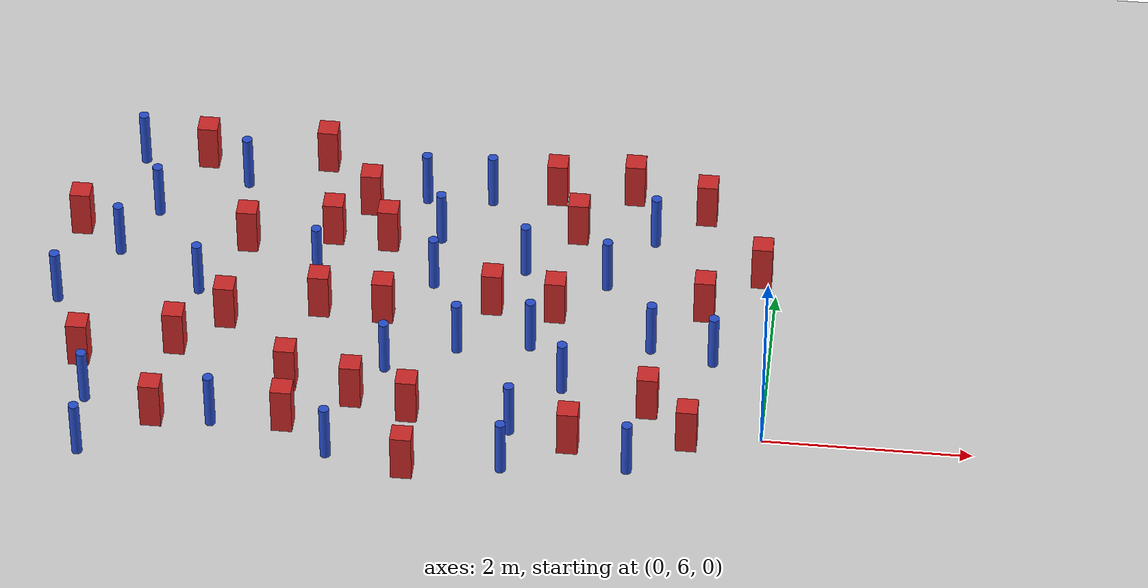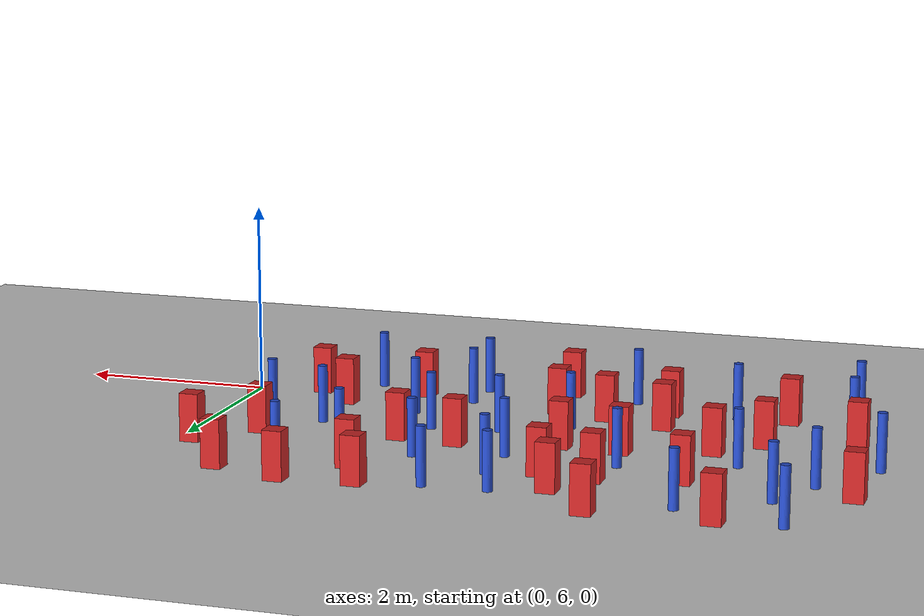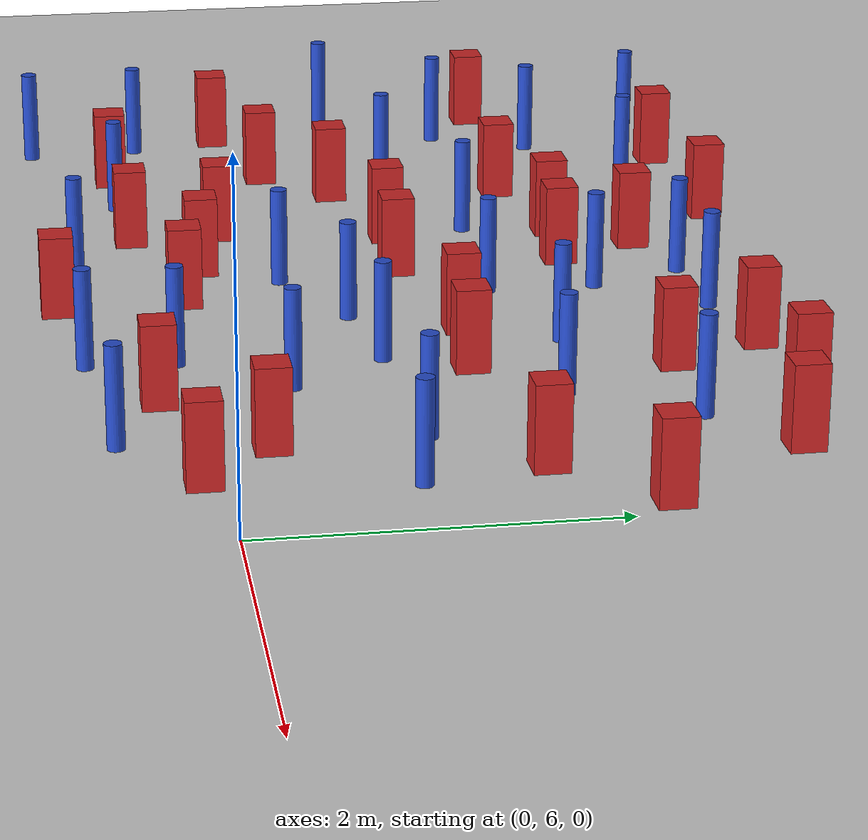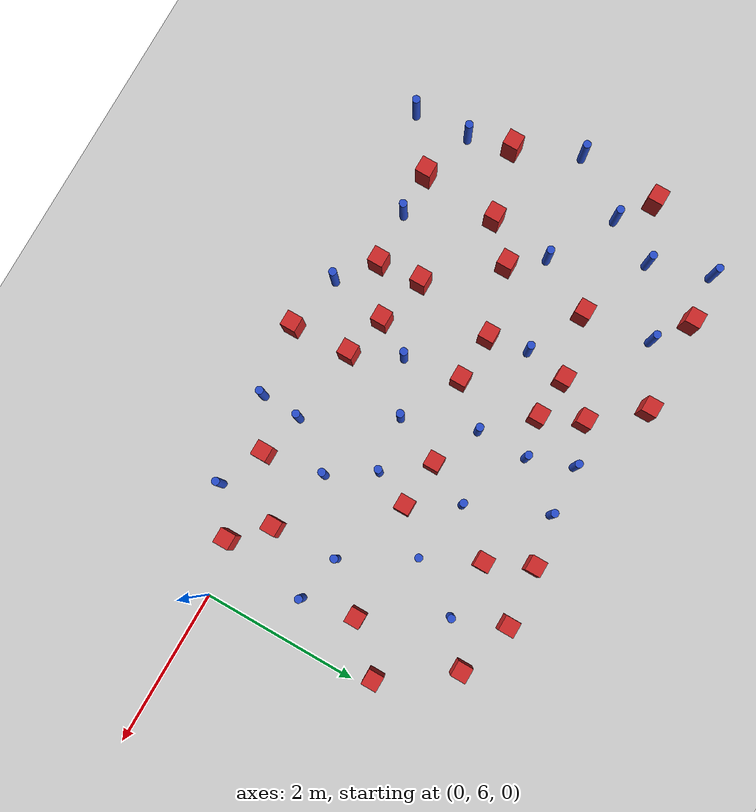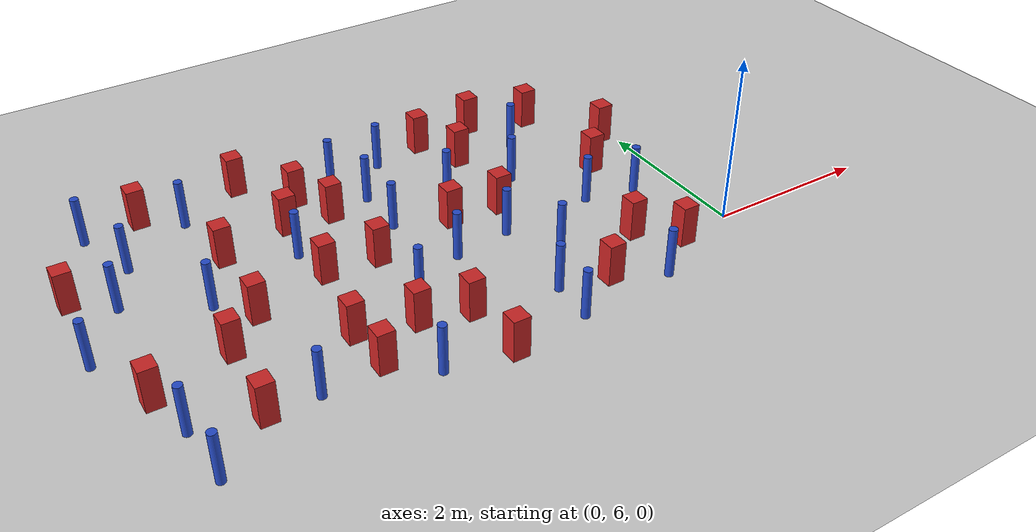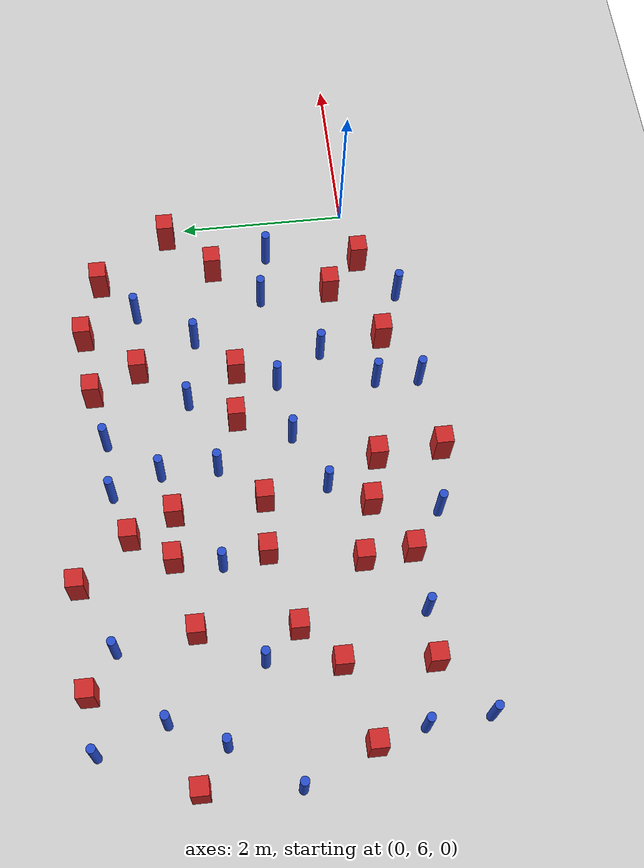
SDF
<sdf version="1.6">
 <world name="default">
  <model name="ground_plane">
   <static>1</static>
   <link name="link">
    <collision name="collision">
     <geometry><plane><normal>0 0 1</normal><size>100 100</size></plane></geometry>
     <surface><friction><ode><mu>100</mu><mu2>50</mu2></ode></friction></surface>
    </collision>
    <visual name="visual">
     <cast_shadows>0</cast_shadows>
     <geometry><plane><normal>0 0 1</normal><size>100 100</size></plane></geometry>
     <material>
      <ambient>1.0 1.0 1.0 1.0</ambient>
      <diffuse>0.8 0.8 0.8 1.0</diffuse>
      <specular>0.01 0.01 0.01 1.000000</specular>
     </material>
    </visual>
   </link>
  </model>
  <model name="square_post_obstacle3">
   <static>true</static>
   <pose>-1.81873640743 5.73639416817 1.91545236811e-07 -7.35059704564e-06 1.12565212e-07 2.39332434364e-05</pose>
   <link name="link">
    <pose>0 0 0.25 0 -0 0</pose>
    <inertial>
     <mass>100</mass>
     <inertia>
      <ixx>0.166667</ixx>
      <ixy>0</ixy>
      <ixz>0</ixz>
      <iyy>0.166667</iyy>
      <iyz>0</iyz>
      <izz>0.166667</izz>
     </inertia>
    </inertial>
    <collision name="collision"><geometry><box><size>.2 .2 .5</size></box></geometry></collision>
    <visual name="visual">
     <geometry><box><size>.2 .2 .5</size></box></geometry>
     <material>
      <script><name>Gazebo/Red</name><uri>file://media/materials/scripts/gazebo.material</uri></script>
     </material>
    </visual>
   </link>
  </model>
  <model name="pole_obstacle2">
   <static>true</static>
   <pose>-5.23044273879 5.70537169708 7.38925637345e-09 -8.47170692796e-08 1.24976764786e-08 -1.74513093032e-07</pose>
   <link name="link">
    <pose>0 0 0.3 0 -0 0</pose>
    <inertial>
     <mass>1</mass>
     <inertia><ixx>0.145833</ixx><ixy>0</ixy><ixz>0</ixz><iyy>0.145833</iyy><iyz>0</iyz><izz>0.125</izz></inertia>
    </inertial>
    <collision name="collision">
     <geometry><cylinder><radius>0.05</radius><length>.6</length></cylinder></geometry>
    </collision>
    <visual name="visual">
     <geometry><cylinder><radius>0.05</radius><length>.6</length></cylinder></geometry>
     <material>
      <script><name>Gazebo/Blue</name><uri>file://media/materials/scripts/gazebo.material</uri></script>
     </material>
    </visual>
   </link>
  </model>
  <model name="square_post_obstacle5">
   <static>true</static>
   <pose>-0.152788292442 8.22200707512 1.91545236811e-07 -7.35059704564e-06 1.12565212e-07 2.39332434364e-05</pose>
   <link name="link">
    <pose>0 0 0.25 0 -0 0</pose>
    <inertial>
     <mass>100</mass>
     <inertia>
      <ixx>0.166667</ixx>
      <ixy>0</ixy>
      <ixz>0</ixz>
      <iyy>0.166667</iyy>
      <iyz>0</iyz>
      <izz>0.166667</izz>
     </inertia>
    </inertial>
    <collision name="collision"><geometry><box><size>.2 .2 .5</size></box></geometry></collision>
    <visual name="visual">
     <geometry><box><size>.2 .2 .5</size></box></geometry>
     <material>
      <script><name>Gazebo/Red</name><uri>file://media/materials/scripts/gazebo.material</uri></script>
     </material>
    </visual>
   </link>
  </model>
  <model name="square_post_obstacle9">
   <static>true</static>
   <pose>-0.674670861115 7.68431918439 1.91545236811e-07 -7.35059704564e-06 1.12565212e-07 2.39332434364e-05</pose>
   <link name="link">
    <pose>0 0 0.25 0 -0 0</pose>
    <inertial>
     <mass>100</mass>
     <inertia>
      <ixx>0.166667</ixx>
      <ixy>0</ixy>
      <ixz>0</ixz>
      <iyy>0.166667</iyy>
      <iyz>0</iyz>
      <izz>0.166667</izz>
     </inertia>
    </inertial>
    <collision name="collision"><geometry><box><size>.2 .2 .5</size></box></geometry></collision>
    <visual name="visual">
     <geometry><box><size>.2 .2 .5</size></box></geometry>
     <material>
      <script><name>Gazebo/Red</name><uri>file://media/materials/scripts/gazebo.material</uri></script>
     </material>
    </visual>
   </link>
  </model>
  <model name="square_post_obstacle10">
   <static>true</static>
   <pose>-4.59014025202 9.49769332026 1.91545236811e-07 -7.35059704564e-06 1.12565212e-07 2.39332434364e-05</pose>
   <link name="link">
    <pose>0 0 0.25 0 -0 0</pose>
    <inertial>
     <mass>100</mass>
     <inertia>
      <ixx>0.166667</ixx>
      <ixy>0</ixy>
      <ixz>0</ixz>
      <iyy>0.166667</iyy>
      <iyz>0</iyz>
      <izz>0.166667</izz>
     </inertia>
    </inertial>
    <collision name="collision"><geometry><box><size>.2 .2 .5</size></box></geometry></collision>
    <visual name="visual">
     <geometry><box><size>.2 .2 .5</size></box></geometry>
     <material>
      <script><name>Gazebo/Red</name><uri>file://media/materials/scripts/gazebo.material</uri></script>
     </material>
    </visual>
   </link>
  </model>
  <model name="pole_obstacle11">
   <static>true</static>
   <pose>-3.0121797537 6.9452448147 7.38925637345e-09 -8.47170692798e-08 1.24976765033e-08 -1.74513093019e-07</pose>
   <link name="link">
    <pose>0 0 0.3 0 -0 0</pose>
    <inertial>
     <mass>1</mass>
     <inertia><ixx>0.145833</ixx><ixy>0</ixy><ixz>0</ixz><iyy>0.145833</iyy><iyz>0</iyz><izz>0.125</izz></inertia>
    </inertial>
    <collision name="collision">
     <geometry><cylinder><radius>0.05</radius><length>.6</length></cylinder></geometry>
    </collision>
    <visual name="visual">
     <geometry><cylinder><radius>0.05</radius><length>.6</length></cylinder></geometry>
     <material>
      <script><name>Gazebo/Blue</name><uri>file://media/materials/scripts/gazebo.material</uri></script>
     </material>
    </visual>
   </link>
  </model>
  <model name="square_post_obstacle25">
   <static>true</static>
   <pose>-4.58687430626 6.32060334056 1.91545236811e-07 -7.35059704564e-06 1.12565212e-07 2.39332434364e-05</pose>
   <link name="link">
    <pose>0 0 0.25 0 -0 0</pose>
    <inertial>
     <mass>100</mass>
     <inertia>
      <ixx>0.166667</ixx>
      <ixy>0</ixy>
      <ixz>0</ixz>
      <iyy>0.166667</iyy>
      <iyz>0</iyz>
      <izz>0.166667</izz>
     </inertia>
    </inertial>
    <collision name="collision"><geometry><box><size>.2 .2 .5</size></box></geometry></collision>
    <visual name="visual">
     <geometry><box><size>.2 .2 .5</size></box></geometry>
     <material>
      <script><name>Gazebo/Red</name><uri>file://media/materials/scripts/gazebo.material</uri></script>
     </material>
    </visual>
   </link>
  </model>
  <model name="square_post_obstacle27">
   <static>true</static>
   <pose>-4.39563183618 8.424634613 1.91545236811e-07 -7.35059704564e-06 1.12565212e-07 2.39332434364e-05</pose>
   <link name="link">
    <pose>0 0 0.25 0 -0 0</pose>
    <inertial>
     <mass>100</mass>
     <inertia>
      <ixx>0.166667</ixx>
      <ixy>0</ixy>
      <ixz>0</ixz>
      <iyy>0.166667</iyy>
      <iyz>0</iyz>
      <izz>0.166667</izz>
     </inertia>
    </inertial>
    <collision name="collision"><geometry><box><size>.2 .2 .5</size></box></geometry></collision>
    <visual name="visual">
     <geometry><box><size>.2 .2 .5</size></box></geometry>
     <material>
      <script><name>Gazebo/Red</name><uri>file://media/materials/scripts/gazebo.material</uri></script>
     </material>
    </visual>
   </link>
  </model>
  <model name="square_post_obstacle29">
   <static>true</static>
   <pose>-5.79026719128 5.70377639639 1.91545236811e-07 -7.35059704564e-06 1.12565212e-07 2.39332434364e-05</pose>
   <link name="link">
    <pose>0 0 0.25 0 -0 0</pose>
    <inertial>
     <mass>100</mass>
     <inertia>
      <ixx>0.166667</ixx>
      <ixy>0</ixy>
      <ixz>0</ixz>
      <iyy>0.166667</iyy>
      <iyz>0</iyz>
      <izz>0.166667</izz>
     </inertia>
    </inertial>
    <collision name="collision"><geometry><box><size>.2 .2 .5</size></box></geometry></collision>
    <visual name="visual">
     <geometry><box><size>.2 .2 .5</size></box></geometry>
     <material>
      <script><name>Gazebo/Red</name><uri>file://media/materials/scripts/gazebo.material</uri></script>
     </material>
    </visual>
   </link>
  </model>
  <model name="pole_obstacle21">
   <static>true</static>
   <pose>-6.42785947863 5.19788490694 7.38925637345e-09 -8.47170692796e-08 1.24976764786e-08 -1.74513093032e-07</pose>
   <link name="link">
    <pose>0 0 0.3 0 -0 0</pose>
    <inertial>
     <mass>1</mass>
     <inertia><ixx>0.145833</ixx><ixy>0</ixy><ixz>0</ixz><iyy>0.145833</iyy><iyz>0</iyz><izz>0.125</izz></inertia>
    </inertial>
    <collision name="collision">
     <geometry><cylinder><radius>0.05</radius><length>.6</length></cylinder></geometry>
    </collision>
    <visual name="visual">
     <geometry><cylinder><radius>0.05</radius><length>.6</length></cylinder></geometry>
     <material>
      <script><name>Gazebo/Blue</name><uri>file://media/materials/scripts/gazebo.material</uri></script>
     </material>
    </visual>
   </link>
  </model>
  <model name="pole_obstacle23">
   <static>true</static>
   <pose>-3.33999881731 8.50043648411 7.38925637345e-09 -8.47170692793e-08 1.24976764408e-08 -1.74513093041e-07</pose>
   <link name="link">
    <pose>0 0 0.3 0 -0 0</pose>
    <inertial>
     <mass>1</mass>
     <inertia><ixx>0.145833</ixx><ixy>0</ixy><ixz>0</ixz><iyy>0.145833</iyy><iyz>0</iyz><izz>0.125</izz></inertia>
    </inertial>
    <collision name="collision">
     <geometry><cylinder><radius>0.05</radius><length>.6</length></cylinder></geometry>
    </collision>
    <visual name="visual">
     <geometry><cylinder><radius>0.05</radius><length>.6</length></cylinder></geometry>
     <material>
      <script><name>Gazebo/Blue</name><uri>file://media/materials/scripts/gazebo.material</uri></script>
     </material>
    </visual>
   </link>
  </model>
  <model name="pole_obstacle39">
   <static>true</static>
   <pose>-6.46774532548 8.00501780913 7.38925637345e-09 -8.47170692797e-08 1.24976764908e-08 -1.74513093024e-07</pose>
   <link name="link">
    <pose>0 0 0.3 0 -0 0</pose>
    <inertial>
     <mass>1</mass>
     <inertia><ixx>0.145833</ixx><ixy>0</ixy><ixz>0</ixz><iyy>0.145833</iyy><iyz>0</iyz><izz>0.125</izz></inertia>
    </inertial>
    <collision name="collision">
     <geometry><cylinder><radius>0.05</radius><length>.6</length></cylinder></geometry>
    </collision>
    <visual name="visual">
     <geometry><cylinder><radius>0.05</radius><length>.6</length></cylinder></geometry>
     <material>
      <script><name>Gazebo/Blue</name><uri>file://media/materials/scripts/gazebo.material</uri></script>
     </material>
    </visual>
   </link>
  </model>
  <model name="pole_obstacle42">
   <static>true</static>
   <pose>-3.54498583152 9.06647936541 7.38925637345e-09 -8.47170692793e-08 1.24976764408e-08 -1.74513093041e-07</pose>
   <link name="link">
    <pose>0 0 0.3 0 -0 0</pose>
    <inertial>
     <mass>1</mass>
     <inertia><ixx>0.145833</ixx><ixy>0</ixy><ixz>0</ixz><iyy>0.145833</iyy><iyz>0</iyz><izz>0.125</izz></inertia>
    </inertial>
    <collision name="collision">
     <geometry><cylinder><radius>0.05</radius><length>.6</length></cylinder></geometry>
    </collision>
    <visual name="visual">
     <geometry><cylinder><radius>0.05</radius><length>.6</length></cylinder></geometry>
     <material>
      <script><name>Gazebo/Blue</name><uri>file://media/materials/scripts/gazebo.material</uri></script>
     </material>
    </visual>
   </link>
  </model>
  <model name="square_post_obstacle43">
   <static>true</static>
   <pose>-4.40130978109 7.37291752565 1.91545236811e-07 -7.35059704564e-06 1.12565212e-07 2.39332434364e-05</pose>
   <link name="link">
    <pose>0 0 0.25 0 -0 0</pose>
    <inertial>
     <mass>100</mass>
     <inertia>
      <ixx>0.166667</ixx>
      <ixy>0</ixy>
      <ixz>0</ixz>
      <iyy>0.166667</iyy>
      <iyz>0</iyz>
      <izz>0.166667</izz>
     </inertia>
    </inertial>
    <collision name="collision"><geometry><box><size>.2 .2 .5</size></box></geometry></collision>
    <visual name="visual">
     <geometry><box><size>.2 .2 .5</size></box></geometry>
     <material>
      <script><name>Gazebo/Red</name><uri>file://media/materials/scripts/gazebo.material</uri></script>
     </material>
    </visual>
   </link>
  </model>
  <model name="pole_obstacle49">
   <static>true</static>
   <pose>-5.35328505241 9.12018198231 7.38925637345e-09 -8.471706928e-08 1.24976765081e-08 -1.74513093015e-07</pose>
   <link name="link">
    <pose>0 0 0.3 0 -0 0</pose>
    <inertial>
     <mass>1</mass>
     <inertia><ixx>0.145833</ixx><ixy>0</ixy><ixz>0</ixz><iyy>0.145833</iyy><iyz>0</iyz><izz>0.125</izz></inertia>
    </inertial>
    <collision name="collision">
     <geometry><cylinder><radius>0.05</radius><length>.6</length></cylinder></geometry>
    </collision>
    <visual name="visual">
     <geometry><cylinder><radius>0.05</radius><length>.6</length></cylinder></geometry>
     <material>
      <script><name>Gazebo/Blue</name><uri>file://media/materials/scripts/gazebo.material</uri></script>
     </material>
    </visual>
   </link>
  </model>
  <model name="pole_obstacle53">
   <static>true</static>
   <pose>-6.97086459811 7.26566633747 7.38925637345e-09 -8.47170692796e-08 1.24976764786e-08 -1.74513093032e-07</pose>
   <link name="link">
    <pose>0 0 0.3 0 -0 0</pose>
    <inertial>
     <mass>1</mass>
     <inertia><ixx>0.145833</ixx><ixy>0</ixy><ixz>0</ixz><iyy>0.145833</iyy><iyz>0</iyz><izz>0.125</izz></inertia>
    </inertial>
    <collision name="collision">
     <geometry><cylinder><radius>0.05</radius><length>.6</length></cylinder></geometry>
    </collision>
    <visual name="visual">
     <geometry><cylinder><radius>0.05</radius><length>.6</length></cylinder></geometry>
     <material>
      <script><name>Gazebo/Blue</name><uri>file://media/materials/scripts/gazebo.material</uri></script>
     </material>
    </visual>
   </link>
  </model>
  <model name="pole_obstacle54">
   <static>true</static>
   <pose>-6.43235915602 9.37907924336 7.38925637345e-09 -8.471706928e-08 1.24976765081e-08 -1.74513093015e-07</pose>
   <link name="link">
    <pose>0 0 0.3 0 -0 0</pose>
    <inertial>
     <mass>1</mass>
     <inertia><ixx>0.145833</ixx><ixy>0</ixy><ixz>0</ixz><iyy>0.145833</iyy><iyz>0</iyz><izz>0.125</izz></inertia>
    </inertial>
    <collision name="collision">
     <geometry><cylinder><radius>0.05</radius><length>.6</length></cylinder></geometry>
    </collision>
    <visual name="visual">
     <geometry><cylinder><radius>0.05</radius><length>.6</length></cylinder></geometry>
     <material>
      <script><name>Gazebo/Blue</name><uri>file://media/materials/scripts/gazebo.material</uri></script>
     </material>
    </visual>
   </link>
  </model>
  <model name="square_post_obstacle63">
   <static>true</static>
   <pose>-5.28801601556 7.12502063161 1.91545236811e-07 -7.35059704564e-06 1.12565212e-07 2.39332434364e-05</pose>
   <link name="link">
    <pose>0 0 0.25 0 -0 0</pose>
    <inertial>
     <mass>100</mass>
     <inertia>
      <ixx>0.166667</ixx>
      <ixy>0</ixy>
      <ixz>0</ixz>
      <iyy>0.166667</iyy>
      <iyz>0</iyz>
      <izz>0.166667</izz>
     </inertia>
    </inertial>
    <collision name="collision"><geometry><box><size>.2 .2 .5</size></box></geometry></collision>
    <visual name="visual">
     <geometry><box><size>.2 .2 .5</size></box></geometry>
     <material>
      <script><name>Gazebo/Red</name><uri>file://media/materials/scripts/gazebo.material</uri></script>
     </material>
    </visual>
   </link>
  </model>
  <model name="pole_obstacle69">
   <static>true</static>
   <pose>-4.08608900414 5.39195555737 7.38925637345e-09 -8.47170692796e-08 1.24976764786e-08 -1.74513093032e-07</pose>
   <link name="link">
    <pose>0 0 0.3 0 -0 0</pose>
    <inertial>
     <mass>1</mass>
     <inertia><ixx>0.145833</ixx><ixy>0</ixy><ixz>0</ixz><iyy>0.145833</iyy><iyz>0</iyz><izz>0.125</izz></inertia>
    </inertial>
    <collision name="collision">
     <geometry><cylinder><radius>0.05</radius><length>.6</length></cylinder></geometry>
    </collision>
    <visual name="visual">
     <geometry><cylinder><radius>0.05</radius><length>.6</length></cylinder></geometry>
     <material>
      <script><name>Gazebo/Blue</name><uri>file://media/materials/scripts/gazebo.material</uri></script>
     </material>
    </visual>
   </link>
  </model>
  <model name="pole_obstacle76">
   <static>true</static>
   <pose>-3.33995487462 7.84032351583 7.38925637345e-09 -8.47170692798e-08 1.24976765033e-08 -1.74513093019e-07</pose>
   <link name="link">
    <pose>0 0 0.3 0 -0 0</pose>
    <inertial>
     <mass>1</mass>
     <inertia><ixx>0.145833</ixx><ixy>0</ixy><ixz>0</ixz><iyy>0.145833</iyy><iyz>0</iyz><izz>0.125</izz></inertia>
    </inertial>
    <collision name="collision">
     <geometry><cylinder><radius>0.05</radius><length>.6</length></cylinder></geometry>
    </collision>
    <visual name="visual">
     <geometry><cylinder><radius>0.05</radius><length>.6</length></cylinder></geometry>
     <material>
      <script><name>Gazebo/Blue</name><uri>file://media/materials/scripts/gazebo.material</uri></script>
     </material>
    </visual>
   </link>
  </model>
  <model name="pole_obstacle83">
   <static>true</static>
   <pose>-3.6748064632 6.61018159023 7.38925637345e-09 -8.47170692794e-08 1.24976764468e-08 -1.7451309304e-07</pose>
   <link name="link">
    <pose>0 0 0.3 0 -0 0</pose>
    <inertial>
     <mass>1</mass>
     <inertia><ixx>0.145833</ixx><ixy>0</ixy><ixz>0</ixz><iyy>0.145833</iyy><iyz>0</iyz><izz>0.125</izz></inertia>
    </inertial>
    <collision name="collision">
     <geometry><cylinder><radius>0.05</radius><length>.6</length></cylinder></geometry>
    </collision>
    <visual name="visual">
     <geometry><cylinder><radius>0.05</radius><length>.6</length></cylinder></geometry>
     <material>
      <script><name>Gazebo/Blue</name><uri>file://media/materials/scripts/gazebo.material</uri></script>
     </material>
    </visual>
   </link>
  </model>
  <model name="square_post_obstacle81">
   <static>true</static>
   <pose>-3.3825346128 6.00637875911 1.91545236811e-07 -7.35059704564e-06 1.12565212e-07 2.39332434364e-05</pose>
   <link name="link">
    <pose>0 0 0.25 0 -0 0</pose>
    <inertial>
     <mass>100</mass>
     <inertia>
      <ixx>0.166667</ixx>
      <ixy>0</ixy>
      <ixz>0</ixz>
      <iyy>0.166667</iyy>
      <iyz>0</iyz>
      <izz>0.166667</izz>
     </inertia>
    </inertial>
    <collision name="collision"><geometry><box><size>.2 .2 .5</size></box></geometry></collision>
    <visual name="visual">
     <geometry><box><size>.2 .2 .5</size></box></geometry>
     <material>
      <script><name>Gazebo/Red</name><uri>file://media/materials/scripts/gazebo.material</uri></script>
     </material>
    </visual>
   </link>
  </model>
  <model name="pole_obstacle98">
   <static>true</static>
   <pose>-2.46711250996 8.11754069497 7.38925637345e-09 -8.47170692793e-08 1.24976764408e-08 -1.74513093041e-07</pose>
   <link name="link">
    <pose>0 0 0.3 0 -0 0</pose>
    <inertial>
     <mass>1</mass>
     <inertia><ixx>0.145833</ixx><ixy>0</ixy><ixz>0</ixz><iyy>0.145833</iyy><iyz>0</iyz><izz>0.125</izz></inertia>
    </inertial>
    <collision name="collision">
     <geometry><cylinder><radius>0.05</radius><length>.6</length></cylinder></geometry>
    </collision>
    <visual name="visual">
     <geometry><cylinder><radius>0.05</radius><length>.6</length></cylinder></geometry>
     <material>
      <script><name>Gazebo/Blue</name><uri>file://media/materials/scripts/gazebo.material</uri></script>
     </material>
    </visual>
   </link>
  </model>
  <model name="pole_obstacle101">
   <static>true</static>
   <pose>-2.30998123264 7.04884680136 7.38925637345e-09 -8.47170692798e-08 1.24976765033e-08 -1.74513093019e-07</pose>
   <link name="link">
    <pose>0 0 0.3 0 -0 0</pose>
    <inertial>
     <mass>1</mass>
     <inertia><ixx>0.145833</ixx><ixy>0</ixy><ixz>0</ixz><iyy>0.145833</iyy><iyz>0</iyz><izz>0.125</izz></inertia>
    </inertial>
    <collision name="collision">
     <geometry><cylinder><radius>0.05</radius><length>.6</length></cylinder></geometry>
    </collision>
    <visual name="visual">
     <geometry><cylinder><radius>0.05</radius><length>.6</length></cylinder></geometry>
     <material>
      <script><name>Gazebo/Blue</name><uri>file://media/materials/scripts/gazebo.material</uri></script>
     </material>
    </visual>
   </link>
  </model>
  <model name="square_post_obstacle89">
   <static>true</static>
   <pose>-4.08227689734 8.8934787274 1.91545236811e-07 -7.35059704564e-06 1.12565212e-07 2.39332434364e-05</pose>
   <link name="link">
    <pose>0 0 0.25 0 -0 0</pose>
    <inertial>
     <mass>100</mass>
     <inertia>
      <ixx>0.166667</ixx>
      <ixy>0</ixy>
      <ixz>0</ixz>
      <iyy>0.166667</iyy>
      <iyz>0</iyz>
      <izz>0.166667</izz>
     </inertia>
    </inertial>
    <collision name="collision"><geometry><box><size>.2 .2 .5</size></box></geometry></collision>
    <visual name="visual">
     <geometry><box><size>.2 .2 .5</size></box></geometry>
     <material>
      <script><name>Gazebo/Red</name><uri>file://media/materials/scripts/gazebo.material</uri></script>
     </material>
    </visual>
   </link>
  </model>
  <model name="pole_obstacle104">
   <static>true</static>
   <pose>-5.61862619842 7.52150683373 7.38925637345e-09 -8.47170692796e-08 1.24976764786e-08 -1.74513093032e-07</pose>
   <link name="link">
    <pose>0 0 0.3 0 -0 0</pose>
    <inertial>
     <mass>1</mass>
     <inertia><ixx>0.145833</ixx><ixy>0</ixy><ixz>0</ixz><iyy>0.145833</iyy><iyz>0</iyz><izz>0.125</izz></inertia>
    </inertial>
    <collision name="collision">
     <geometry><cylinder><radius>0.05</radius><length>.6</length></cylinder></geometry>
    </collision>
    <visual name="visual">
     <geometry><cylinder><radius>0.05</radius><length>.6</length></cylinder></geometry>
     <material>
      <script><name>Gazebo/Blue</name><uri>file://media/materials/scripts/gazebo.material</uri></script>
     </material>
    </visual>
   </link>
  </model>
  <model name="square_post_obstacle92">
   <static>true</static>
   <pose>-1.48909794892 9.30139255126 1.91545236811e-07 -7.35059704564e-06 1.12565212e-07 2.39332434364e-05</pose>
   <link name="link">
    <pose>0 0 0.25 0 -0 0</pose>
    <inertial>
     <mass>100</mass>
     <inertia>
      <ixx>0.166667</ixx>
      <ixy>0</ixy>
      <ixz>0</ixz>
      <iyy>0.166667</iyy>
      <iyz>0</iyz>
      <izz>0.166667</izz>
     </inertia>
    </inertial>
    <collision name="collision"><geometry><box><size>.2 .2 .5</size></box></geometry></collision>
    <visual name="visual">
     <geometry><box><size>.2 .2 .5</size></box></geometry>
     <material>
      <script><name>Gazebo/Red</name><uri>file://media/materials/scripts/gazebo.material</uri></script>
     </material>
    </visual>
   </link>
  </model>
  <model name="square_post_obstacle96">
   <static>true</static>
   <pose>-5.22565129639 8.23428750228 1.91545236811e-07 -7.35059704564e-06 1.12565212e-07 2.39332434364e-05</pose>
   <link name="link">
    <pose>0 0 0.25 0 -0 0</pose>
    <inertial>
     <mass>100</mass>
     <inertia>
      <ixx>0.166667</ixx>
      <ixy>0</ixy>
      <ixz>0</ixz>
      <iyy>0.166667</iyy>
      <iyz>0</iyz>
      <izz>0.166667</izz>
     </inertia>
    </inertial>
    <collision name="collision"><geometry><box><size>.2 .2 .5</size></box></geometry></collision>
    <visual name="visual">
     <geometry><box><size>.2 .2 .5</size></box></geometry>
     <material>
      <script><name>Gazebo/Red</name><uri>file://media/materials/scripts/gazebo.material</uri></script>
     </material>
    </visual>
   </link>
  </model>
  <model name="square_post_obstacle102">
   <static>true</static>
   <pose>-0.754218362719 9.07587685244 1.91545236811e-07 -7.35059704564e-06 1.12565212e-07 2.39332434364e-05</pose>
   <link name="link">
    <pose>0 0 0.25 0 -0 0</pose>
    <inertial>
     <mass>100</mass>
     <inertia>
      <ixx>0.166667</ixx>
      <ixy>0</ixy>
      <ixz>0</ixz>
      <iyy>0.166667</iyy>
      <iyz>0</iyz>
      <izz>0.166667</izz>
     </inertia>
    </inertial>
    <collision name="collision"><geometry><box><size>.2 .2 .5</size></box></geometry></collision>
    <visual name="visual">
     <geometry><box><size>.2 .2 .5</size></box></geometry>
     <material>
      <script><name>Gazebo/Red</name><uri>file://media/materials/scripts/gazebo.material</uri></script>
     </material>
    </visual>
   </link>
  </model>
  <model name="pole_obstacle117">
   <static>true</static>
   <pose>-1.23862133088 5.46622028663 7.38925637345e-09 -8.47170692799e-08 1.24976765033e-08 -1.74513093018e-07</pose>
   <link name="link">
    <pose>0 0 0.3 0 -0 0</pose>
    <inertial>
     <mass>1</mass>
     <inertia><ixx>0.145833</ixx><ixy>0</ixy><ixz>0</ixz><iyy>0.145833</iyy><iyz>0</iyz><izz>0.125</izz></inertia>
    </inertial>
    <collision name="collision">
     <geometry><cylinder><radius>0.05</radius><length>.6</length></cylinder></geometry>
    </collision>
    <visual name="visual">
     <geometry><cylinder><radius>0.05</radius><length>.6</length></cylinder></geometry>
     <material>
      <script><name>Gazebo/Blue</name><uri>file://media/materials/scripts/gazebo.material</uri></script>
     </material>
    </visual>
   </link>
  </model>
  <model name="square_post_obstacle112">
   <static>true</static>
   <pose>-2.25750530497 9.227738501 1.91545236811e-07 -7.35059704564e-06 1.12565212e-07 2.39332434364e-05</pose>
   <link name="link">
    <pose>0 0 0.25 0 -0 0</pose>
    <inertial>
     <mass>100</mass>
     <inertia>
      <ixx>0.166667</ixx>
      <ixy>0</ixy>
      <ixz>0</ixz>
      <iyy>0.166667</iyy>
      <iyz>0</iyz>
      <izz>0.166667</izz>
     </inertia>
    </inertial>
    <collision name="collision"><geometry><box><size>.2 .2 .5</size></box></geometry></collision>
    <visual name="visual">
     <geometry><box><size>.2 .2 .5</size></box></geometry>
     <material>
      <script><name>Gazebo/Red</name><uri>file://media/materials/scripts/gazebo.material</uri></script>
     </material>
    </visual>
   </link>
  </model>
  <model name="pole_obstacle133">
   <static>true</static>
   <pose>-1.23281711389 8.65844861746 7.38925637345e-09 -8.47170692798e-08 1.24976764881e-08 -1.74513093027e-07</pose>
   <link name="link">
    <pose>0 0 0.3 0 -0 0</pose>
    <inertial>
     <mass>1</mass>
     <inertia><ixx>0.145833</ixx><ixy>0</ixy><ixz>0</ixz><iyy>0.145833</iyy><iyz>0</iyz><izz>0.125</izz></inertia>
    </inertial>
    <collision name="collision">
     <geometry><cylinder><radius>0.05</radius><length>.6</length></cylinder></geometry>
    </collision>
    <visual name="visual">
     <geometry><cylinder><radius>0.05</radius><length>.6</length></cylinder></geometry>
     <material>
      <script><name>Gazebo/Blue</name><uri>file://media/materials/scripts/gazebo.material</uri></script>
     </material>
    </visual>
   </link>
  </model>
  <model name="pole_obstacle139">
   <static>true</static>
   <pose>-2.41980007367 5.3623742317 7.38925637345e-09 -8.47170692798e-08 1.24976765033e-08 -1.74513093019e-07</pose>
   <link name="link">
    <pose>0 0 0.3 0 -0 0</pose>
    <inertial>
     <mass>1</mass>
     <inertia><ixx>0.145833</ixx><ixy>0</ixy><ixz>0</ixz><iyy>0.145833</iyy><iyz>0</iyz><izz>0.125</izz></inertia>
    </inertial>
    <collision name="collision">
     <geometry><cylinder><radius>0.05</radius><length>.6</length></cylinder></geometry>
    </collision>
    <visual name="visual">
     <geometry><cylinder><radius>0.05</radius><length>.6</length></cylinder></geometry>
     <material>
      <script><name>Gazebo/Blue</name><uri>file://media/materials/scripts/gazebo.material</uri></script>
     </material>
    </visual>
   </link>
  </model>
  <model name="square_post_obstacle125">
   <static>true</static>
   <pose>-3.33736290911 5.24899485516 1.91545236811e-07 -7.35059704564e-06 1.12565212e-07 2.39332434364e-05</pose>
   <link name="link">
    <pose>0 0 0.25 0 -0 0</pose>
    <inertial>
     <mass>100</mass>
     <inertia>
      <ixx>0.166667</ixx>
      <ixy>0</ixy>
      <ixz>0</ixz>
      <iyy>0.166667</iyy>
      <iyz>0</iyz>
      <izz>0.166667</izz>
     </inertia>
    </inertial>
    <collision name="collision"><geometry><box><size>.2 .2 .5</size></box></geometry></collision>
    <visual name="visual">
     <geometry><box><size>.2 .2 .5</size></box></geometry>
     <material>
      <script><name>Gazebo/Red</name><uri>file://media/materials/scripts/gazebo.material</uri></script>
     </material>
    </visual>
   </link>
  </model>
  <model name="pole_obstacle141">
   <static>true</static>
   <pose>-6.47633308819 5.90860262749 7.38925637345e-09 -8.47170692796e-08 1.24976764786e-08 -1.74513093032e-07</pose>
   <link name="link">
    <pose>0 0 0.3 0 -0 0</pose>
    <inertial>
     <mass>1</mass>
     <inertia><ixx>0.145833</ixx><ixy>0</ixy><ixz>0</ixz><iyy>0.145833</iyy><iyz>0</iyz><izz>0.125</izz></inertia>
    </inertial>
    <collision name="collision">
     <geometry><cylinder><radius>0.05</radius><length>.6</length></cylinder></geometry>
    </collision>
    <visual name="visual">
     <geometry><cylinder><radius>0.05</radius><length>.6</length></cylinder></geometry>
     <material>
      <script><name>Gazebo/Blue</name><uri>file://media/materials/scripts/gazebo.material</uri></script>
     </material>
    </visual>
   </link>
  </model>
  <model name="square_post_obstacle128">
   <static>true</static>
   <pose>-6.61455051668 6.4590925169 1.91545236811e-07 -7.35059704564e-06 1.12565212e-07 2.39332434364e-05</pose>
   <link name="link">
    <pose>0 0 0.25 0 -0 0</pose>
    <inertial>
     <mass>100</mass>
     <inertia>
      <ixx>0.166667</ixx>
      <ixy>0</ixy>
      <ixz>0</ixz>
      <iyy>0.166667</iyy>
      <iyz>0</iyz>
      <izz>0.166667</izz>
     </inertia>
    </inertial>
    <collision name="collision"><geometry><box><size>.2 .2 .5</size></box></geometry></collision>
    <visual name="visual">
     <geometry><box><size>.2 .2 .5</size></box></geometry>
     <material>
      <script><name>Gazebo/Red</name><uri>file://media/materials/scripts/gazebo.material</uri></script>
     </material>
    </visual>
   </link>
  </model>
  <model name="square_post_obstacle129">
   <static>true</static>
   <pose>-3.77579540895 7.34566147246 1.91545236811e-07 -7.35059704564e-06 1.12565212e-07 2.39332434364e-05</pose>
   <link name="link">
    <pose>0 0 0.25 0 -0 0</pose>
    <inertial>
     <mass>100</mass>
     <inertia>
      <ixx>0.166667</ixx>
      <ixy>0</ixy>
      <ixz>0</ixz>
      <iyy>0.166667</iyy>
      <iyz>0</iyz>
      <izz>0.166667</izz>
     </inertia>
    </inertial>
    <collision name="collision"><geometry><box><size>.2 .2 .5</size></box></geometry></collision>
    <visual name="visual">
     <geometry><box><size>.2 .2 .5</size></box></geometry>
     <material>
      <script><name>Gazebo/Red</name><uri>file://media/materials/scripts/gazebo.material</uri></script>
     </material>
    </visual>
   </link>
  </model>
  <model name="pole_obstacle142">
   <static>true</static>
   <pose>-2.39444181159 5.87746714122 7.38925637345e-09 -8.47170692798e-08 1.24976765033e-08 -1.74513093019e-07</pose>
   <link name="link">
    <pose>0 0 0.3 0 -0 0</pose>
    <inertial>
     <mass>1</mass>
     <inertia><ixx>0.145833</ixx><ixy>0</ixy><ixz>0</ixz><iyy>0.145833</iyy><iyz>0</iyz><izz>0.125</izz></inertia>
    </inertial>
    <collision name="collision">
     <geometry><cylinder><radius>0.05</radius><length>.6</length></cylinder></geometry>
    </collision>
    <visual name="visual">
     <geometry><cylinder><radius>0.05</radius><length>.6</length></cylinder></geometry>
     <material>
      <script><name>Gazebo/Blue</name><uri>file://media/materials/scripts/gazebo.material</uri></script>
     </material>
    </visual>
   </link>
  </model>
  <model name="square_post_obstacle133">
   <static>true</static>
   <pose>-2.11367761085 7.52167443235 1.91545236811e-07 -7.35059704564e-06 1.12565212e-07 2.39332434364e-05</pose>
   <link name="link">
    <pose>0 0 0.25 0 -0 0</pose>
    <inertial>
     <mass>100</mass>
     <inertia>
      <ixx>0.166667</ixx>
      <ixy>0</ixy>
      <ixz>0</ixz>
      <iyy>0.166667</iyy>
      <iyz>0</iyz>
      <izz>0.166667</izz>
     </inertia>
    </inertial>
    <collision name="collision"><geometry><box><size>.2 .2 .5</size></box></geometry></collision>
    <visual name="visual">
     <geometry><box><size>.2 .2 .5</size></box></geometry>
     <material>
      <script><name>Gazebo/Red</name><uri>file://media/materials/scripts/gazebo.material</uri></script>
     </material>
    </visual>
   </link>
  </model>
  <model name="pole_obstacle151">
   <static>true</static>
   <pose>-1.94998881909 6.49323728787 7.38925637345e-09 -8.47170692799e-08 1.24976765033e-08 -1.74513093018e-07</pose>
   <link name="link">
    <pose>0 0 0.3 0 -0 0</pose>
    <inertial>
     <mass>1</mass>
     <inertia><ixx>0.145833</ixx><ixy>0</ixy><ixz>0</ixz><iyy>0.145833</iyy><iyz>0</iyz><izz>0.125</izz></inertia>
    </inertial>
    <collision name="collision">
     <geometry><cylinder><radius>0.05</radius><length>.6</length></cylinder></geometry>
    </collision>
    <visual name="visual">
     <geometry><cylinder><radius>0.05</radius><length>.6</length></cylinder></geometry>
     <material>
      <script><name>Gazebo/Blue</name><uri>file://media/materials/scripts/gazebo.material</uri></script>
     </material>
    </visual>
   </link>
  </model>
  <model name="square_post_obstacle141">
   <static>true</static>
   <pose>-2.7344607038 7.5708872952 1.91545236811e-07 -7.35059704564e-06 1.12565212e-07 2.39332434364e-05</pose>
   <link name="link">
    <pose>0 0 0.25 0 -0 0</pose>
    <inertial>
     <mass>100</mass>
     <inertia>
      <ixx>0.166667</ixx>
      <ixy>0</ixy>
      <ixz>0</ixz>
      <iyy>0.166667</iyy>
      <iyz>0</iyz>
      <izz>0.166667</izz>
     </inertia>
    </inertial>
    <collision name="collision"><geometry><box><size>.2 .2 .5</size></box></geometry></collision>
    <visual name="visual">
     <geometry><box><size>.2 .2 .5</size></box></geometry>
     <material>
      <script><name>Gazebo/Red</name><uri>file://media/materials/scripts/gazebo.material</uri></script>
     </material>
    </visual>
   </link>
  </model>
  <model name="square_post_obstacle142">
   <static>true</static>
   <pose>-5.79201690455 9.43269643067 1.91545236811e-07 -7.35059704564e-06 1.12565212e-07 2.39332434364e-05</pose>
   <link name="link">
    <pose>0 0 0.25 0 -0 0</pose>
    <inertial>
     <mass>100</mass>
     <inertia>
      <ixx>0.166667</ixx>
      <ixy>0</ixy>
      <ixz>0</ixz>
      <iyy>0.166667</iyy>
      <iyz>0</iyz>
      <izz>0.166667</izz>
     </inertia>
    </inertial>
    <collision name="collision"><geometry><box><size>.2 .2 .5</size></box></geometry></collision>
    <visual name="visual">
     <geometry><box><size>.2 .2 .5</size></box></geometry>
     <material>
      <script><name>Gazebo/Red</name><uri>file://media/materials/scripts/gazebo.material</uri></script>
     </material>
    </visual>
   </link>
  </model>
  <model name="square_post_obstacle155">
   <static>true</static>
   <pose>-1.99495219635 8.6730240622 1.91545236811e-07 -7.35059704564e-06 1.12565212e-07 2.39332434364e-05</pose>
   <link name="link">
    <pose>0 0 0.25 0 -0 0</pose>
    <inertial>
     <mass>100</mass>
     <inertia>
      <ixx>0.166667</ixx>
      <ixy>0</ixy>
      <ixz>0</ixz>
      <iyy>0.166667</iyy>
      <iyz>0</iyz>
      <izz>0.166667</izz>
     </inertia>
    </inertial>
    <collision name="collision"><geometry><box><size>.2 .2 .5</size></box></geometry></collision>
    <visual name="visual">
     <geometry><box><size>.2 .2 .5</size></box></geometry>
     <material>
      <script><name>Gazebo/Red</name><uri>file://media/materials/scripts/gazebo.material</uri></script>
     </material>
    </visual>
   </link>
  </model>
  <model name="pole_obstacle166">
   <static>true</static>
   <pose>-1.14940109007 7.1279461891 7.38925637345e-09 -8.47170692799e-08 1.24976765033e-08 -1.74513093018e-07</pose>
   <link name="link">
    <pose>0 0 0.3 0 -0 0</pose>
    <inertial>
     <mass>1</mass>
     <inertia><ixx>0.145833</ixx><ixy>0</ixy><ixz>0</ixz><iyy>0.145833</iyy><iyz>0</iyz><izz>0.125</izz></inertia>
    </inertial>
    <collision name="collision">
     <geometry><cylinder><radius>0.05</radius><length>.6</length></cylinder></geometry>
    </collision>
    <visual name="visual">
     <geometry><cylinder><radius>0.05</radius><length>.6</length></cylinder></geometry>
     <material>
      <script><name>Gazebo/Blue</name><uri>file://media/materials/scripts/gazebo.material</uri></script>
     </material>
    </visual>
   </link>
  </model>
  <model name="pole_obstacle184">
   <static>true</static>
   <pose>-6.17388124049 8.61703990988 7.38925637345e-09 -8.471706928e-08 1.24976765081e-08 -1.74513093015e-07</pose>
   <link name="link">
    <pose>0 0 0.3 0 -0 0</pose>
    <inertial>
     <mass>1</mass>
     <inertia><ixx>0.145833</ixx><ixy>0</ixy><ixz>0</ixz><iyy>0.145833</iyy><iyz>0</iyz><izz>0.125</izz></inertia>
    </inertial>
    <collision name="collision">
     <geometry><cylinder><radius>0.05</radius><length>.6</length></cylinder></geometry>
    </collision>
    <visual name="visual">
     <geometry><cylinder><radius>0.05</radius><length>.6</length></cylinder></geometry>
     <material>
      <script><name>Gazebo/Blue</name><uri>file://media/materials/scripts/gazebo.material</uri></script>
     </material>
    </visual>
   </link>
  </model>
  <model name="pole_obstacle186">
   <static>true</static>
   <pose>-1.65130969498 7.98004887242 7.38925637345e-09 -8.47170692799e-08 1.24976764983e-08 -1.74513093021e-07</pose>
   <link name="link">
    <pose>0 0 0.3 0 -0 0</pose>
    <inertial>
     <mass>1</mass>
     <inertia><ixx>0.145833</ixx><ixy>0</ixy><ixz>0</ixz><iyy>0.145833</iyy><iyz>0</iyz><izz>0.125</izz></inertia>
    </inertial>
    <collision name="collision">
     <geometry><cylinder><radius>0.05</radius><length>.6</length></cylinder></geometry>
    </collision>
    <visual name="visual">
     <geometry><cylinder><radius>0.05</radius><length>.6</length></cylinder></geometry>
     <material>
      <script><name>Gazebo/Blue</name><uri>file://media/materials/scripts/gazebo.material</uri></script>
     </material>
    </visual>
   </link>
  </model>
  <model name="square_post_obstacle173">
   <static>true</static>
   <pose>-5.72285354804 6.70628168636 1.91545236811e-07 -7.35059704564e-06 1.12565212e-07 2.39332434364e-05</pose>
   <link name="link">
    <pose>0 0 0.25 0 -0 0</pose>
    <inertial>
     <mass>100</mass>
     <inertia>
      <ixx>0.166667</ixx>
      <ixy>0</ixy>
      <ixz>0</ixz>
      <iyy>0.166667</iyy>
      <iyz>0</iyz>
      <izz>0.166667</izz>
     </inertia>
    </inertial>
    <collision name="collision"><geometry><box><size>.2 .2 .5</size></box></geometry></collision>
    <visual name="visual">
     <geometry><box><size>.2 .2 .5</size></box></geometry>
     <material>
      <script><name>Gazebo/Red</name><uri>file://media/materials/scripts/gazebo.material</uri></script>
     </material>
    </visual>
   </link>
  </model>
  <model name="square_post_obstacle176">
   <static>true</static>
   <pose>-6.89405769299 8.32301643132 1.91545236811e-07 -7.35059704564e-06 1.12565212e-07 2.39332434364e-05</pose>
   <link name="link">
    <pose>0 0 0.25 0 -0 0</pose>
    <inertial>
     <mass>100</mass>
     <inertia>
      <ixx>0.166667</ixx>
      <ixy>0</ixy>
      <ixz>0</ixz>
      <iyy>0.166667</iyy>
      <iyz>0</iyz>
      <izz>0.166667</izz>
     </inertia>
    </inertial>
    <collision name="collision"><geometry><box><size>.2 .2 .5</size></box></geometry></collision>
    <visual name="visual">
     <geometry><box><size>.2 .2 .5</size></box></geometry>
     <material>
      <script><name>Gazebo/Red</name><uri>file://media/materials/scripts/gazebo.material</uri></script>
     </material>
    </visual>
   </link>
  </model>
  <model name="square_post_obstacle179">
   <static>true</static>
   <pose>-1.11119738758 6.28282525226 1.91545236811e-07 -7.35059704564e-06 1.12565212e-07 2.39332434364e-05</pose>
   <link name="link">
    <pose>0 0 0.25 0 -0 0</pose>
    <inertial>
     <mass>100</mass>
     <inertia>
      <ixx>0.166667</ixx>
      <ixy>0</ixy>
      <ixz>0</ixz>
      <iyy>0.166667</iyy>
      <iyz>0</iyz>
      <izz>0.166667</izz>
     </inertia>
    </inertial>
    <collision name="collision"><geometry><box><size>.2 .2 .5</size></box></geometry></collision>
    <visual name="visual">
     <geometry><box><size>.2 .2 .5</size></box></geometry>
     <material>
      <script><name>Gazebo/Red</name><uri>file://media/materials/scripts/gazebo.material</uri></script>
     </material>
    </visual>
   </link>
  </model>
  <model name="pole_obstacle190">
   <static>true</static>
   <pose>-0.540327481257 7.00584388342 7.38925637345e-09 -8.471706928e-08 1.24976765117e-08 -1.74513093013e-07</pose>
   <link name="link">
    <pose>0 0 0.3 0 -0 0</pose>
    <inertial>
     <mass>1</mass>
     <inertia><ixx>0.145833</ixx><ixy>0</ixy><ixz>0</ixz><iyy>0.145833</iyy><iyz>0</iyz><izz>0.125</izz></inertia>
    </inertial>
    <collision name="collision">
     <geometry><cylinder><radius>0.05</radius><length>.6</length></cylinder></geometry>
    </collision>
    <visual name="visual">
     <geometry><cylinder><radius>0.05</radius><length>.6</length></cylinder></geometry>
     <material>
      <script><name>Gazebo/Blue</name><uri>file://media/materials/scripts/gazebo.material</uri></script>
     </material>
    </visual>
   </link>
  </model>
  <model name="pole_obstacle199">
   <static>true</static>
   <pose>-2.89546149793 9.10303932523 7.38925637345e-09 -8.47170692793e-08 1.24976764408e-08 -1.74513093041e-07</pose>
   <link name="link">
    <pose>0 0 0.3 0 -0 0</pose>
    <inertial>
     <mass>1</mass>
     <inertia><ixx>0.145833</ixx><ixy>0</ixy><ixz>0</ixz><iyy>0.145833</iyy><iyz>0</iyz><izz>0.125</izz></inertia>
    </inertial>
    <collision name="collision">
     <geometry><cylinder><radius>0.05</radius><length>.6</length></cylinder></geometry>
    </collision>
    <visual name="visual">
     <geometry><cylinder><radius>0.05</radius><length>.6</length></cylinder></geometry>
     <material>
      <script><name>Gazebo/Blue</name><uri>file://media/materials/scripts/gazebo.material</uri></script>
     </material>
    </visual>
   </link>
  </model>
  <model name="square_post_obstacle191">
   <static>true</static>
   <pose>-3.93576316884 6.15119054064 1.91545236811e-07 -7.35059704564e-06 1.12565212e-07 2.39332434364e-05</pose>
   <link name="link">
    <pose>0 0 0.25 0 -0 0</pose>
    <inertial>
     <mass>100</mass>
     <inertia>
      <ixx>0.166667</ixx>
      <ixy>0</ixy>
      <ixz>0</ixz>
      <iyy>0.166667</iyy>
      <iyz>0</iyz>
      <izz>0.166667</izz>
     </inertia>
    </inertial>
    <collision name="collision"><geometry><box><size>.2 .2 .5</size></box></geometry></collision>
    <visual name="visual">
     <geometry><box><size>.2 .2 .5</size></box></geometry>
     <material>
      <script><name>Gazebo/Red</name><uri>file://media/materials/scripts/gazebo.material</uri></script>
     </material>
    </visual>
   </link>
  </model>
  <model name="pole_obstacle221">
   <static>true</static>
   <pose>-4.49553163295 7.88415533327 7.38925637345e-09 -8.47170692796e-08 1.24976764786e-08 -1.74513093032e-07</pose>
   <link name="link">
    <pose>0 0 0.3 0 -0 0</pose>
    <inertial>
     <mass>1</mass>
     <inertia><ixx>0.145833</ixx><ixy>0</ixy><ixz>0</ixz><iyy>0.145833</iyy><iyz>0</iyz><izz>0.125</izz></inertia>
    </inertial>
    <collision name="collision">
     <geometry><cylinder><radius>0.05</radius><length>.6</length></cylinder></geometry>
    </collision>
    <visual name="visual">
     <geometry><cylinder><radius>0.05</radius><length>.6</length></cylinder></geometry>
     <material>
      <script><name>Gazebo/Blue</name><uri>file://media/materials/scripts/gazebo.material</uri></script>
     </material>
    </visual>
   </link>
  </model>
  <model name="square_post_obstacle203">
   <static>true</static>
   <pose>-4.54041618213 5.75828396149 1.91545236811e-07 -7.35059704564e-06 1.12565212e-07 2.39332434364e-05</pose>
   <link name="link">
    <pose>0 0 0.25 0 -0 0</pose>
    <inertial>
     <mass>100</mass>
     <inertia>
      <ixx>0.166667</ixx>
      <ixy>0</ixy>
      <ixz>0</ixz>
      <iyy>0.166667</iyy>
      <iyz>0</iyz>
      <izz>0.166667</izz>
     </inertia>
    </inertial>
    <collision name="collision"><geometry><box><size>.2 .2 .5</size></box></geometry></collision>
    <visual name="visual">
     <geometry><box><size>.2 .2 .5</size></box></geometry>
     <material>
      <script><name>Gazebo/Red</name><uri>file://media/materials/scripts/gazebo.material</uri></script>
     </material>
    </visual>
   </link>
  </model>
  <model name="square_post_obstacle213">
   <static>true</static>
   <pose>-3.84762482901 8.38102061721 1.91545236811e-07 -7.35059704564e-06 1.12565212e-07 2.39332434364e-05</pose>
   <link name="link">
    <pose>0 0 0.25 0 -0 0</pose>
    <inertial>
     <mass>100</mass>
     <inertia>
      <ixx>0.166667</ixx>
      <ixy>0</ixy>
      <ixz>0</ixz>
      <iyy>0.166667</iyy>
      <iyz>0</iyz>
      <izz>0.166667</izz>
     </inertia>
    </inertial>
    <collision name="collision"><geometry><box><size>.2 .2 .5</size></box></geometry></collision>
    <visual name="visual">
     <geometry><box><size>.2 .2 .5</size></box></geometry>
     <material>
      <script><name>Gazebo/Red</name><uri>file://media/materials/scripts/gazebo.material</uri></script>
     </material>
    </visual>
   </link>
  </model>
  <model name="square_post_obstacle216">
   <static>true</static>
   <pose>-0.705348711623 5.88440531327 1.91545236811e-07 -7.35059704564e-06 1.12565212e-07 2.39332434364e-05</pose>
   <link name="link">
    <pose>0 0 0.25 0 -0 0</pose>
    <inertial>
     <mass>100</mass>
     <inertia>
      <ixx>0.166667</ixx>
      <ixy>0</ixy>
      <ixz>0</ixz>
      <iyy>0.166667</iyy>
      <iyz>0</iyz>
      <izz>0.166667</izz>
     </inertia>
    </inertial>
    <collision name="collision"><geometry><box><size>.2 .2 .5</size></box></geometry></collision>
    <visual name="visual">
     <geometry><box><size>.2 .2 .5</size></box></geometry>
     <material>
      <script><name>Gazebo/Red</name><uri>file://media/materials/scripts/gazebo.material</uri></script>
     </material>
    </visual>
   </link>
  </model>
 </world>
</sdf>
